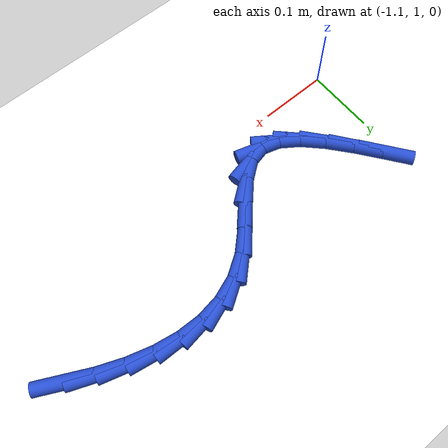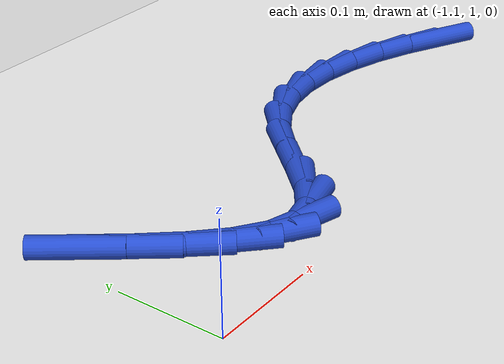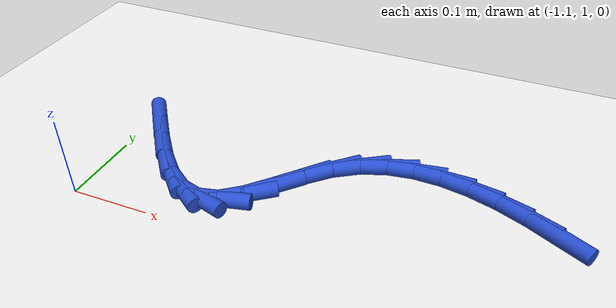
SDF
<sdf version="1.6">
 <world name="default">
  <model name="ground_plane">
   <static>1</static>
   <link name="link">
    <collision name="collision">
     <geometry><plane><normal>0 0 1</normal><size>100 100</size></plane></geometry>
     <surface><friction><ode><mu>100</mu><mu2>50</mu2></ode></friction></surface>
    </collision>
    <visual name="visual">
     <cast_shadows>0</cast_shadows>
     <geometry><plane><normal>0 0 1</normal><size>100 100</size></plane></geometry>
     <material>
      <script><uri>file://media/materials/scripts/gazebo.material</uri><name>Gazebo/WhiteGlow</name></script>
     </material>
    </visual>
   </link>
  </model>
  <model name="line">
   <link name="link_37">
    <pose>-0.554352880361563 1.1306475456488643 0.01 0 1.57 -0.4643217695408438</pose>
    <collision name="collision">
     <geometry><cylinder><radius>0.01</radius><length>0.08</length></cylinder></geometry>
    </collision>
    <visual name="visual">
     <material>
      <script><name>Gazebo/Blue</name><uri>file://media/materials/scripts/gazebo.material</uri></script>
     </material>
     <geometry><cylinder><radius>0.01</radius><length>0.08</length></cylinder></geometry>
    </visual>
   </link>
   <link name="link_38">
    <pose>-0.5901186488928541 1.1485605799193341 0.01 0 1.57 -0.38549111227731736</pose>
    <collision name="collision">
     <geometry><cylinder><radius>0.01</radius><length>0.08</length></cylinder></geometry>
    </collision>
    <visual name="visual">
     <material>
      <script><name>Gazebo/Blue</name><uri>file://media/materials/scripts/gazebo.material</uri></script>
     </material>
     <geometry><cylinder><radius>0.01</radius><length>0.08</length></cylinder></geometry>
    </visual>
   </link>
   <link name="link_39">
    <pose>-0.6262878748105175 1.1632378309180864 0.01 0 1.57 -0.2890568928570356</pose>
    <collision name="collision">
     <geometry><cylinder><radius>0.01</radius><length>0.08</length></cylinder></geometry>
    </collision>
    <visual name="visual">
     <material>
      <script><name>Gazebo/Blue</name><uri>file://media/materials/scripts/gazebo.material</uri></script>
     </material>
     <geometry><cylinder><radius>0.01</radius><length>0.08</length></cylinder></geometry>
    </visual>
   </link>
   <link name="link_40">
    <pose>-0.66243401375783 1.173987186025011 0.01 0 1.57 -0.17004891429307034</pose>
    <collision name="collision">
     <geometry><cylinder><radius>0.01</radius><length>0.08</length></cylinder></geometry>
    </collision>
    <visual name="visual">
     <material>
      <script><name>Gazebo/Blue</name><uri>file://media/materials/scripts/gazebo.material</uri></script>
     </material>
     <geometry><cylinder><radius>0.01</radius><length>0.08</length></cylinder></geometry>
    </visual>
   </link>
   <link name="link_41">
    <pose>-0.6981305213780676 1.1801165326199978 0.01 0 1.57 -0.02346547020581845</pose>
    <collision name="collision">
     <geometry><cylinder><radius>0.01</radius><length>0.08</length></cylinder></geometry>
    </collision>
    <visual name="visual">
     <material>
      <script><name>Gazebo/Blue</name><uri>file://media/materials/scripts/gazebo.material</uri></script>
     </material>
     <geometry><cylinder><radius>0.01</radius><length>0.08</length></cylinder></geometry>
    </visual>
   </link>
   <link name="link_42">
    <pose>-0.732950853314508 1.1809337580829358 0.01 0 1.57 0.15353675549089574</pose>
    <collision name="collision">
     <geometry><cylinder><radius>0.01</radius><length>0.08</length></cylinder></geometry>
    </collision>
    <visual name="visual">
     <material>
      <script><name>Gazebo/Blue</name><uri>file://media/materials/scripts/gazebo.material</uri></script>
     </material>
     <geometry><cylinder><radius>0.01</radius><length>0.08</length></cylinder></geometry>
    </visual>
   </link>
   <link name="link_43">
    <pose>-0.7664684652104277 1.175746749793715 0.01 0 1.57 0.3577422237787321</pose>
    <collision name="collision">
     <geometry><cylinder><radius>0.01</radius><length>0.08</length></cylinder></geometry>
    </collision>
    <visual name="visual">
     <material>
      <script><name>Gazebo/Blue</name><uri>file://media/materials/scripts/gazebo.material</uri></script>
     </material>
     <geometry><cylinder><radius>0.01</radius><length>0.08</length></cylinder></geometry>
    </visual>
   </link>
   <link name="link_44">
    <pose>-0.798256812709103 1.1638633951322253 0.01 0 1.57 0.5766273810100219</pose>
    <collision name="collision">
     <geometry><cylinder><radius>0.01</radius><length>0.08</length></cylinder></geometry>
    </collision>
    <visual name="visual">
     <material>
      <script><name>Gazebo/Blue</name><uri>file://media/materials/scripts/gazebo.material</uri></script>
     </material>
     <geometry><cylinder><radius>0.01</radius><length>0.08</length></cylinder></geometry>
    </visual>
   </link>
   <link name="link_45">
    <pose>-0.8278893572024018 1.144591610328662 0.01 0 1.57 0.7667213764128141</pose>
    <collision name="collision">
     <geometry><cylinder><radius>0.01</radius><length>0.08</length></cylinder></geometry>
    </collision>
    <visual name="visual">
     <material>
      <script><name>Gazebo/Blue</name><uri>file://media/materials/scripts/gazebo.material</uri></script>
     </material>
     <geometry><cylinder><radius>0.01</radius><length>0.08</length></cylinder></geometry>
    </visual>
   </link>
   <link name="link_46">
    <pose>-0.8551558932639086 1.1183250173844301 0.01 0 1.57 0.8483430362697949</pose>
    <collision name="collision">
     <geometry><cylinder><radius>0.01</radius><length>0.08</length></cylinder></geometry>
    </collision>
    <visual name="visual">
     <material>
      <script><name>Gazebo/Blue</name><uri>file://media/materials/scripts/gazebo.material</uri></script>
     </material>
     <geometry><cylinder><radius>0.01</radius><length>0.08</length></cylinder></geometry>
    </visual>
   </link>
   <link name="link_47">
    <pose>-0.8806353522398481 1.0894176587113753 0.01 0 1.57 0.8216456822103181</pose>
    <collision name="collision">
     <geometry><cylinder><radius>0.01</radius><length>0.08</length></cylinder></geometry>
    </collision>
    <visual name="visual">
     <material>
      <script><name>Gazebo/Blue</name><uri>file://media/materials/scripts/gazebo.material</uri></script>
     </material>
     <geometry><cylinder><radius>0.01</radius><length>0.08</length></cylinder></geometry>
    </visual>
   </link>
   <link name="link_48">
    <pose>-0.9050865511566233 1.0631263643546527 0.01 0 1.57 0.650925079657704</pose>
    <collision name="collision">
     <geometry><cylinder><radius>0.01</radius><length>0.08</length></cylinder></geometry>
    </collision>
    <visual name="visual">
     <material>
      <script><name>Gazebo/Blue</name><uri>file://media/materials/scripts/gazebo.material</uri></script>
     </material>
     <geometry><cylinder><radius>0.01</radius><length>0.08</length></cylinder></geometry>
    </visual>
   </link>
   <link name="link_49">
    <pose>-0.929268307040638 1.0447079643594201 0.01 0 1.57 0.22738726000629253</pose>
    <collision name="collision">
     <geometry><cylinder><radius>0.01</radius><length>0.08</length></cylinder></geometry>
    </collision>
    <visual name="visual">
     <material>
      <script><name>Gazebo/Blue</name><uri>file://media/materials/scripts/gazebo.material</uri></script>
     </material>
     <geometry><cylinder><radius>0.01</radius><length>0.08</length></cylinder></geometry>
    </visual>
   </link>
   <link name="link_50">
    <pose>-0.9538927391358144 1.0390101401021683 0.01 0 1.57 -0.28409257812150845</pose>
    <collision name="collision">
     <geometry><cylinder><radius>0.01</radius><length>0.08</length></cylinder></geometry>
    </collision>
    <visual name="visual">
     <material>
      <script><name>Gazebo/Blue</name><uri>file://media/materials/scripts/gazebo.material</uri></script>
     </material>
     <geometry><cylinder><radius>0.01</radius><length>0.08</length></cylinder></geometry>
    </visual>
   </link>
   <link name="link_51">
    <pose>-0.9791591771869583 1.0463877013556677 0.01 0 1.57 -0.6101024004403374</pose>
    <collision name="collision">
     <geometry><cylinder><radius>0.01</radius><length>0.08</length></cylinder></geometry>
    </collision>
    <visual name="visual">
     <material>
      <script><name>Gazebo/Blue</name><uri>file://media/materials/scripts/gazebo.material</uri></script>
     </material>
     <geometry><cylinder><radius>0.01</radius><length>0.08</length></cylinder></geometry>
    </visual>
   </link>
   <link name="link_52">
    <pose>-1.004949860349779 1.0644172276324797 0.01 0 1.57 -0.7858641204738551</pose>
    <collision name="collision">
     <geometry><cylinder><radius>0.01</radius><length>0.08</length></cylinder></geometry>
    </collision>
    <visual name="visual">
     <material>
      <script><name>Gazebo/Blue</name><uri>file://media/materials/scripts/gazebo.material</uri></script>
     </material>
     <geometry><cylinder><radius>0.01</radius><length>0.08</length></cylinder></geometry>
    </visual>
   </link>
   <link name="link_53">
    <pose>-1.0311423273660987 1.0906341151601864 0.01 0 1.57 -0.8787355006214235</pose>
    <collision name="collision">
     <geometry><cylinder><radius>0.01</radius><length>0.08</length></cylinder></geometry>
    </collision>
    <visual name="visual">
     <material>
      <script><name>Gazebo/Blue</name><uri>file://media/materials/scripts/gazebo.material</uri></script>
     </material>
     <geometry><cylinder><radius>0.01</radius><length>0.08</length></cylinder></geometry>
    </visual>
   </link>
   <link name="link_54">
    <pose>-1.0576141169777407 1.1225737601663701 0.01 0 1.57 -0.9231207834619701</pose>
    <collision name="collision">
     <geometry><cylinder><radius>0.01</radius><length>0.08</length></cylinder></geometry>
    </collision>
    <visual name="visual">
     <material>
      <script><name>Gazebo/Blue</name><uri>file://media/materials/scripts/gazebo.material</uri></script>
     </material>
     <geometry><cylinder><radius>0.01</radius><length>0.08</length></cylinder></geometry>
    </visual>
   </link>
   <link name="link_55">
    <pose>-1.0842427679265265 1.1577715588786133 0.01 0 1.57 -0.9331974266913816</pose>
    <collision name="collision">
     <geometry><cylinder><radius>0.01</radius><length>0.08</length></cylinder></geometry>
    </collision>
    <visual name="visual">
     <material>
      <script><name>Gazebo/Blue</name><uri>file://media/materials/scripts/gazebo.material</uri></script>
     </material>
     <geometry><cylinder><radius>0.01</radius><length>0.08</length></cylinder></geometry>
    </visual>
   </link>
  </model>
 </world>
</sdf>
